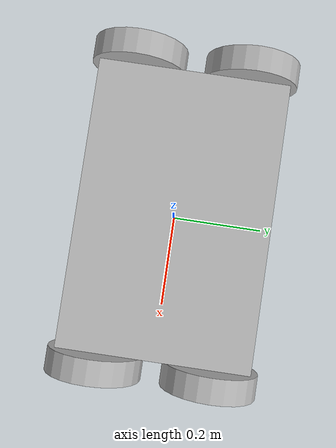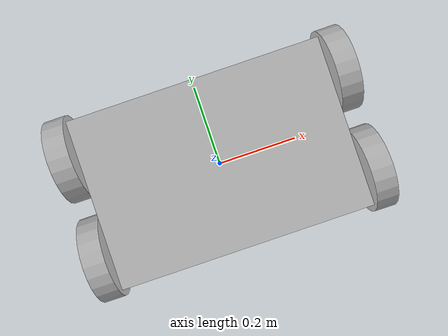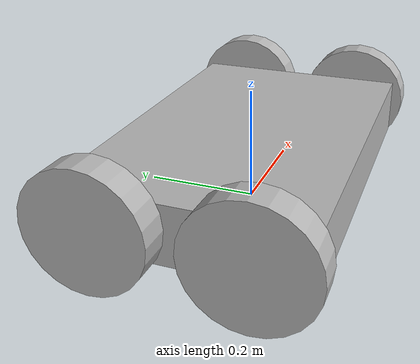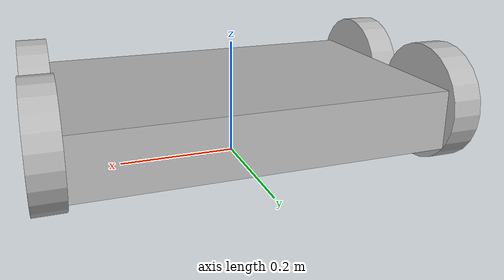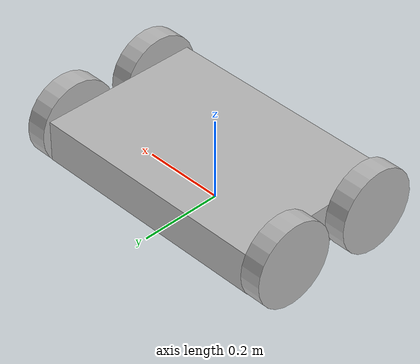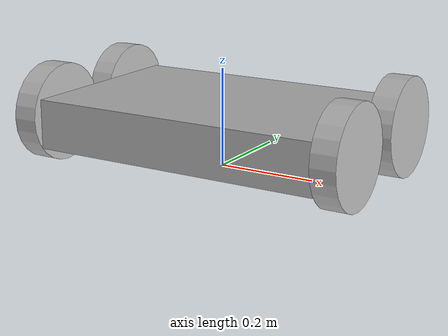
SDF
<?xml version='1.0'?>
<sdf version='1.4'>
  <model name="h-bot">
	<static>false</static> #Change this later
	  <link name='chassis'>
            <pose>0 0 .09 0 0 0</pose>

            <collision name='collision'>
              <geometry>
                <box>
                  <size>.6 .4 .1</size>
                </box>
              </geometry>
            </collision>

            <visual name='visual'>
              <geometry>
                <box>
                  <size>.6 .4 .1</size>
                </box>
              </geometry>
            </visual>
	</link>
	<link name="center_wheel">
	  <pose>0 0 .05 0 1.5707 1.5707</pose>
	   <collision name='center_wheel_collision'>
            <geometry>
              <cylinder>
                <radius>.05</radius>
		<length>.05</length>
              </cylinder>
            </geometry>

            <surface>
              <friction>
                <ode>
                  <mu>0</mu>
                  <mu2>0</mu2>
                  <slip1>1.0</slip1>
                  <slip2>1.0</slip2>
                </ode>
              </friction>
            </surface>
          </collision>

          <visual name='center_wheel_visual'>
            <pose>0 0 0 0 0 1.5707</pose>
            <geometry>
              <cylinder>
                <radius>.05</radius>
		<length>.05</length>
              </cylinder>
            </geometry>
          </visual>
          </link>
	<link name="left_front_wheel">
        <pose>-0.325 0.12 0.1 1.5707 1.5707 1.5707</pose>
        <collision name="collision">
          <geometry>
            <cylinder>
              <radius>.1</radius>
              <length>.05</length>
            </cylinder>
          </geometry>
        </collision>
        <visual name="visual">
          <geometry>
            <cylinder>
              <radius>.1</radius>
              <length>.05</length>
            </cylinder>
          </geometry>
        </visual>
      </link>
 	<link name="right_front_wheel">
        <pose>0.325 0.12 0.1 1.5707 1.5707 1.5707</pose>
        <collision name="collision">
          <geometry>
            <cylinder>
              <radius>.1</radius>
              <length>.05</length>
            </cylinder>
          </geometry>
        </collision>
        <visual name="visual">
          <geometry>
            <cylinder>
              <radius>.1</radius>
              <length>.05</length>
            </cylinder>
          </geometry>
        </visual>
      </link>
<link name="left_rear_wheel">
        <pose>-0.325 -0.12 0.1 1.5707 1.5707 1.5707</pose>
        <collision name="collision">
          <geometry>
            <cylinder>
              <radius>.1</radius>
              <length>.05</length>
            </cylinder>
          </geometry>
        </collision>
        <visual name="visual">
          <geometry>
            <cylinder>
              <radius>.1</radius>
              <length>.05</length>
            </cylinder>
          </geometry>
        </visual>
      </link>
 	<link name="right_rear_wheel">
        <pose>0.325 -0.12 0.1 1.5707 1.5707 1.5707</pose>
        <collision name="collision">
          <geometry>
            <cylinder>
              <radius>.1</radius>
              <length>.05</length>
            </cylinder>
          </geometry>
        </collision>
        <visual name="visual">
          <geometry>
            <cylinder>
              <radius>.1</radius>
              <length>.05</length>
            </cylinder>
          </geometry>
        </visual>
      </link>
      <joint type="revolute" name="left_front_wheel_hinge">
        <pose>-.03 0 0 0 0 0</pose>
        <child>left_front_wheel</child>
        <parent>chassis</parent>
        <axis>
          <xyz>1 0 0</xyz>
        </axis>
      </joint>

      <joint type="revolute" name="right_front_wheel_hinge">
        <pose>.03 0 0 0 0 0</pose>
        <child>right_front_wheel</child>
        <parent>chassis</parent>
        <axis>
          <xyz>1 0 0</xyz>
        </axis>
      </joint>
      <joint type="revolute" name="left_rear_wheel_hinge">
        <pose>-.03 0 0 0 0 0</pose>
        <child>left_rear_wheel</child>
        <parent>chassis</parent>
        <axis>
          <xyz>1 0 0</xyz>
        </axis>
      </joint>

      <joint type="revolute" name="right_rear_wheel_hinge">
        <pose>.03 0 0 0 0 0</pose>
        <child>right_rear_wheel</child>
        <parent>chassis</parent>
        <axis>
          <xyz>1 0 0</xyz>
        </axis>
      </joint>
      <joint type="revolute" name="center_wheel_hinge">
        <pose>.03 0 0 0 0 0</pose>
        <child>center_wheel</child>
        <parent>chassis</parent>
        <axis>
          <xyz>0 1 0</xyz>
        </axis>
      </joint>
  </model>
</sdf>
